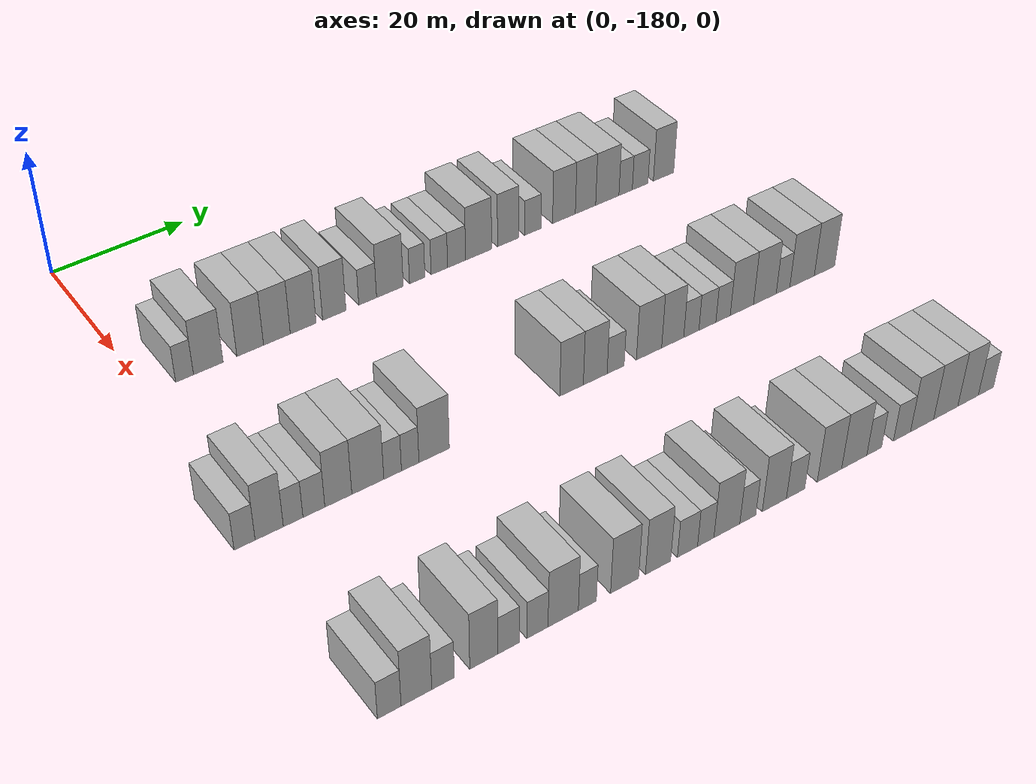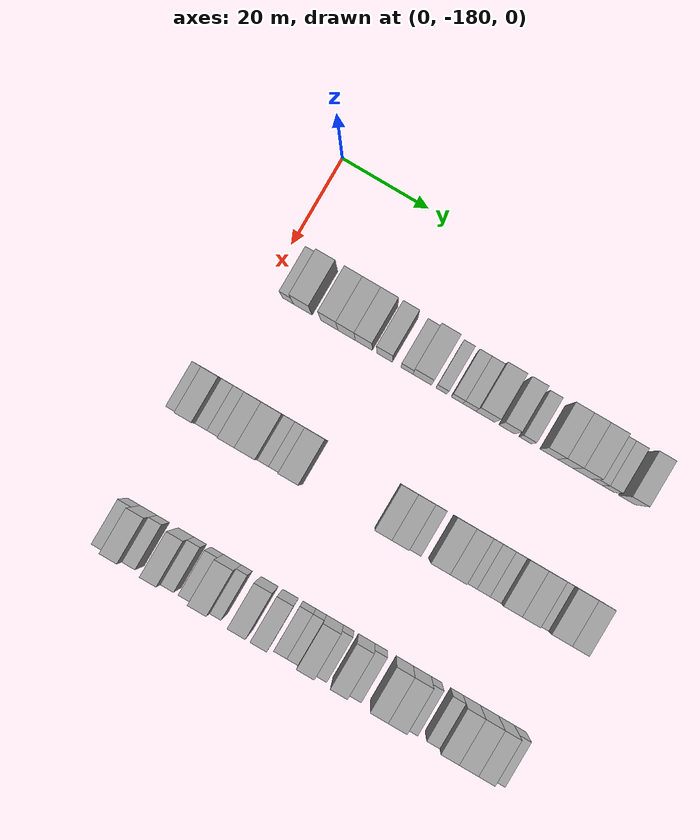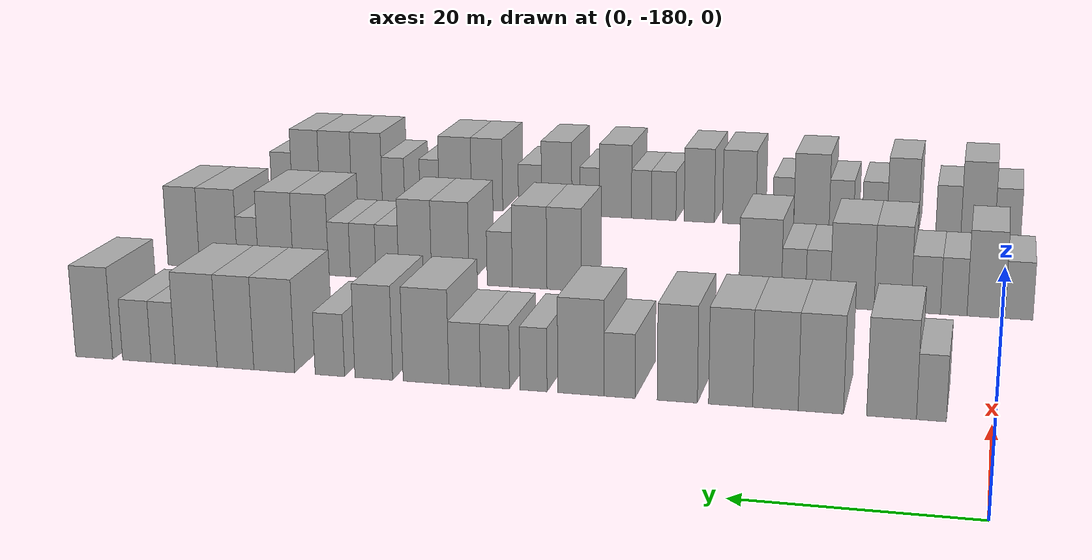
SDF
<sdf version="1.6">
 <world name="default">
  <model name="building_19">
   <static>1</static>
   <pose>25.0000 -174.8789 0 0.000000 0.000000 0.000000</pose>
   <link name="link">
    <pose>0 0 3.00 0 0 0</pose>
    <collision name="collision"><geometry><box><size>10.0000 2.5469 6.0000</size></box></geometry></collision>
    <visual name="visual">
     <cast_shadows>0</cast_shadows>
     <geometry><box><size>10.0000 2.5469 6.0000</size></box></geometry>
     <material>
      <script>
       <uri>model://HANNAS_wall/materials/scripts</uri>
       <uri>model://HANNAS_wall/materials/textures</uri>
       <name>vrc/HANNAS_wall</name>
      </script>
     </material>
    </visual>
   </link>
  </model>
  <model name="building_20">
   <static>1</static>
   <pose>25.0000 -171.4664 0 0.000000 0.000000 0.000000</pose>
   <link name="link">
    <pose>0 0 4.50 0 0 0</pose>
    <collision name="collision"><geometry><box><size>10.0000 4.2780 9.0000</size></box></geometry></collision>
    <visual name="visual">
     <cast_shadows>0</cast_shadows>
     <geometry><box><size>10.0000 4.2780 9.0000</size></box></geometry>
     <material>
      <script>
       <uri>model://HANNAS_wall/materials/scripts</uri>
       <uri>model://HANNAS_wall/materials/textures</uri>
       <name>vrc/HANNAS_wall</name>
      </script>
     </material>
    </visual>
   </link>
  </model>
  <model name="building_21">
   <static>1</static>
   <pose>25.0000 -165.3564 0 0.000000 0.000000 0.000000</pose>
   <link name="link">
    <pose>0 0 4.50 0 0 0</pose>
    <collision name="collision"><geometry><box><size>10.0000 3.9420 9.0000</size></box></geometry></collision>
    <visual name="visual">
     <cast_shadows>0</cast_shadows>
     <geometry><box><size>10.0000 3.9420 9.0000</size></box></geometry>
     <material>
      <script>
       <uri>model://HANNAS_wall/materials/scripts</uri>
       <uri>model://HANNAS_wall/materials/textures</uri>
       <name>vrc/HANNAS_wall</name>
      </script>
     </material>
    </visual>
   </link>
  </model>
  <model name="building_22">
   <static>1</static>
   <pose>25.0000 -161.3830 0 0.000000 0.000000 0.000000</pose>
   <link name="link">
    <pose>0 0 4.50 0 0 0</pose>
    <collision name="collision"><geometry><box><size>10.0000 4.0049 9.0000</size></box></geometry></collision>
    <visual name="visual">
     <cast_shadows>0</cast_shadows>
     <geometry><box><size>10.0000 4.0049 9.0000</size></box></geometry>
     <material>
      <script>
       <uri>model://HANNAS_wall/materials/scripts</uri>
       <uri>model://HANNAS_wall/materials/textures</uri>
       <name>vrc/HANNAS_wall</name>
      </script>
     </material>
    </visual>
   </link>
  </model>
  <model name="building_23">
   <static>1</static>
   <pose>25.0000 -157.4230 0 0.000000 0.000000 0.000000</pose>
   <link name="link">
    <pose>0 0 4.50 0 0 0</pose>
    <collision name="collision"><geometry><box><size>10.0000 3.9150 9.0000</size></box></geometry></collision>
    <visual name="visual">
     <cast_shadows>0</cast_shadows>
     <geometry><box><size>10.0000 3.9150 9.0000</size></box></geometry>
     <material>
      <script>
       <uri>model://HANNAS_wall/materials/scripts</uri>
       <uri>model://HANNAS_wall/materials/textures</uri>
       <name>vrc/HANNAS_wall</name>
      </script>
     </material>
    </visual>
   </link>
  </model>
  <model name="building_24">
   <static>1</static>
   <pose>25.0000 -152.6581 0 0.000000 0.000000 0.000000</pose>
   <link name="link">
    <pose>0 0 4.50 0 0 0</pose>
    <collision name="collision"><geometry><box><size>10.0000 3.6148 9.0000</size></box></geometry></collision>
    <visual name="visual">
     <cast_shadows>0</cast_shadows>
     <geometry><box><size>10.0000 3.6148 9.0000</size></box></geometry>
     <material>
      <script>
       <uri>model://HANNAS_wall/materials/scripts</uri>
       <uri>model://HANNAS_wall/materials/textures</uri>
       <name>vrc/HANNAS_wall</name>
      </script>
     </material>
    </visual>
   </link>
  </model>
  <model name="building_25">
   <static>1</static>
   <pose>25.0000 -147.4534 0 0.000000 0.000000 0.000000</pose>
   <link name="link">
    <pose>0 0 3.00 0 0 0</pose>
    <collision name="collision"><geometry><box><size>10.0000 2.7946 6.0000</size></box></geometry></collision>
    <visual name="visual">
     <cast_shadows>0</cast_shadows>
     <geometry><box><size>10.0000 2.7946 6.0000</size></box></geometry>
     <material>
      <script>
       <uri>model://HANNAS_wall/materials/scripts</uri>
       <uri>model://HANNAS_wall/materials/textures</uri>
       <name>vrc/HANNAS_wall</name>
      </script>
     </material>
    </visual>
   </link>
  </model>
  <model name="building_26">
   <static>1</static>
   <pose>25.0000 -143.9272 0 0.000000 0.000000 0.000000</pose>
   <link name="link">
    <pose>0 0 4.50 0 0 0</pose>
    <collision name="collision"><geometry><box><size>10.0000 4.2579 9.0000</size></box></geometry></collision>
    <visual name="visual">
     <cast_shadows>0</cast_shadows>
     <geometry><box><size>10.0000 4.2579 9.0000</size></box></geometry>
     <material>
      <script>
       <uri>model://HANNAS_wall/materials/scripts</uri>
       <uri>model://HANNAS_wall/materials/textures</uri>
       <name>vrc/HANNAS_wall</name>
      </script>
     </material>
    </visual>
   </link>
  </model>
  <model name="building_27">
   <static>1</static>
   <pose>25.0000 -139.5497 0 0.000000 0.000000 0.000000</pose>
   <link name="link">
    <pose>0 0 3.00 0 0 0</pose>
    <collision name="collision"><geometry><box><size>10.0000 2.4971 6.0000</size></box></geometry></collision>
    <visual name="visual">
     <cast_shadows>0</cast_shadows>
     <geometry><box><size>10.0000 2.4971 6.0000</size></box></geometry>
     <material>
      <script>
       <uri>model://HANNAS_wall/materials/scripts</uri>
       <uri>model://HANNAS_wall/materials/textures</uri>
       <name>vrc/HANNAS_wall</name>
      </script>
     </material>
    </visual>
   </link>
  </model>
  <model name="building_28">
   <static>1</static>
   <pose>25.0000 -135.9501 0 0.000000 0.000000 0.000000</pose>
   <link name="link">
    <pose>0 0 3.00 0 0 0</pose>
    <collision name="collision"><geometry><box><size>10.0000 2.7020 6.0000</size></box></geometry></collision>
    <visual name="visual">
     <cast_shadows>0</cast_shadows>
     <geometry><box><size>10.0000 2.7020 6.0000</size></box></geometry>
     <material>
      <script>
       <uri>model://HANNAS_wall/materials/scripts</uri>
       <uri>model://HANNAS_wall/materials/textures</uri>
       <name>vrc/HANNAS_wall</name>
      </script>
     </material>
    </visual>
   </link>
  </model>
  <model name="building_29">
   <static>1</static>
   <pose>25.0000 -133.1098 0 0.000000 0.000000 0.000000</pose>
   <link name="link">
    <pose>0 0 3.00 0 0 0</pose>
    <collision name="collision"><geometry><box><size>10.0000 2.9786 6.0000</size></box></geometry></collision>
    <visual name="visual">
     <cast_shadows>0</cast_shadows>
     <geometry><box><size>10.0000 2.9786 6.0000</size></box></geometry>
     <material>
      <script>
       <uri>model://HANNAS_wall/materials/scripts</uri>
       <uri>model://HANNAS_wall/materials/textures</uri>
       <name>vrc/HANNAS_wall</name>
      </script>
     </material>
    </visual>
   </link>
  </model>
  <model name="building_30">
   <static>1</static>
   <pose>25.0000 -129.4488 0 0.000000 0.000000 0.000000</pose>
   <link name="link">
    <pose>0 0 4.50 0 0 0</pose>
    <collision name="collision"><geometry><box><size>10.0000 4.3434 9.0000</size></box></geometry></collision>
    <visual name="visual">
     <cast_shadows>0</cast_shadows>
     <geometry><box><size>10.0000 4.3434 9.0000</size></box></geometry>
     <material>
      <script>
       <uri>model://HANNAS_wall/materials/scripts</uri>
       <uri>model://HANNAS_wall/materials/textures</uri>
       <name>vrc/HANNAS_wall</name>
      </script>
     </material>
    </visual>
   </link>
  </model>
  <model name="building_31">
   <static>1</static>
   <pose>25.0000 -124.4628 0 0.000000 0.000000 0.000000</pose>
   <link name="link">
    <pose>0 0 4.50 0 0 0</pose>
    <collision name="collision"><geometry><box><size>10.0000 3.6286 9.0000</size></box></geometry></collision>
    <visual name="visual">
     <cast_shadows>0</cast_shadows>
     <geometry><box><size>10.0000 3.6286 9.0000</size></box></geometry>
     <material>
      <script>
       <uri>model://HANNAS_wall/materials/scripts</uri>
       <uri>model://HANNAS_wall/materials/textures</uri>
       <name>vrc/HANNAS_wall</name>
      </script>
     </material>
    </visual>
   </link>
  </model>
  <model name="building_32">
   <static>1</static>
   <pose>25.0000 -120.2204 0 0.000000 0.000000 0.000000</pose>
   <link name="link">
    <pose>0 0 3.00 0 0 0</pose>
    <collision name="collision"><geometry><box><size>10.0000 2.8562 6.0000</size></box></geometry></collision>
    <visual name="visual">
     <cast_shadows>0</cast_shadows>
     <geometry><box><size>10.0000 2.8562 6.0000</size></box></geometry>
     <material>
      <script>
       <uri>model://HANNAS_wall/materials/scripts</uri>
       <uri>model://HANNAS_wall/materials/textures</uri>
       <name>vrc/HANNAS_wall</name>
      </script>
     </material>
    </visual>
   </link>
  </model>
  <model name="building_33">
   <static>1</static>
   <pose>25.0000 -114.7876 0 0.000000 0.000000 0.000000</pose>
   <link name="link">
    <pose>0 0 4.50 0 0 0</pose>
    <collision name="collision"><geometry><box><size>10.0000 4.0094 9.0000</size></box></geometry></collision>
    <visual name="visual">
     <cast_shadows>0</cast_shadows>
     <geometry><box><size>10.0000 4.0094 9.0000</size></box></geometry>
     <material>
      <script>
       <uri>model://HANNAS_wall/materials/scripts</uri>
       <uri>model://HANNAS_wall/materials/textures</uri>
       <name>vrc/HANNAS_wall</name>
      </script>
     </material>
    </visual>
   </link>
  </model>
  <model name="building_34">
   <static>1</static>
   <pose>25.0000 -110.9722 0 0.000000 0.000000 0.000000</pose>
   <link name="link">
    <pose>0 0 4.50 0 0 0</pose>
    <collision name="collision"><geometry><box><size>10.0000 3.6215 9.0000</size></box></geometry></collision>
    <visual name="visual">
     <cast_shadows>0</cast_shadows>
     <geometry><box><size>10.0000 3.6215 9.0000</size></box></geometry>
     <material>
      <script>
       <uri>model://HANNAS_wall/materials/scripts</uri>
       <uri>model://HANNAS_wall/materials/textures</uri>
       <name>vrc/HANNAS_wall</name>
      </script>
     </material>
    </visual>
   </link>
  </model>
  <model name="building_35">
   <static>1</static>
   <pose>25.0000 -107.0577 0 0.000000 0.000000 0.000000</pose>
   <link name="link">
    <pose>0 0 4.50 0 0 0</pose>
    <collision name="collision"><geometry><box><size>10.0000 4.2074 9.0000</size></box></geometry></collision>
    <visual name="visual">
     <cast_shadows>0</cast_shadows>
     <geometry><box><size>10.0000 4.2074 9.0000</size></box></geometry>
     <material>
      <script>
       <uri>model://HANNAS_wall/materials/scripts</uri>
       <uri>model://HANNAS_wall/materials/textures</uri>
       <name>vrc/HANNAS_wall</name>
      </script>
     </material>
    </visual>
   </link>
  </model>
  <model name="building_36">
   <static>1</static>
   <pose>25.0000 -103.7360 0 0.000000 0.000000 0.000000</pose>
   <link name="link">
    <pose>0 0 3.00 0 0 0</pose>
    <collision name="collision"><geometry><box><size>10.0000 2.4360 6.0000</size></box></geometry></collision>
    <visual name="visual">
     <cast_shadows>0</cast_shadows>
     <geometry><box><size>10.0000 2.4360 6.0000</size></box></geometry>
     <material>
      <script>
       <uri>model://HANNAS_wall/materials/scripts</uri>
       <uri>model://HANNAS_wall/materials/textures</uri>
       <name>vrc/HANNAS_wall</name>
      </script>
     </material>
    </visual>
   </link>
  </model>
  <model name="building_37">
   <static>1</static>
   <pose>25.0000 -101.0745 0 0.000000 0.000000 0.000000</pose>
   <link name="link">
    <pose>0 0 3.00 0 0 0</pose>
    <collision name="collision"><geometry><box><size>10.0000 2.8871 6.0000</size></box></geometry></collision>
    <visual name="visual">
     <cast_shadows>0</cast_shadows>
     <geometry><box><size>10.0000 2.8871 6.0000</size></box></geometry>
     <material>
      <script>
       <uri>model://HANNAS_wall/materials/scripts</uri>
       <uri>model://HANNAS_wall/materials/textures</uri>
       <name>vrc/HANNAS_wall</name>
      </script>
     </material>
    </visual>
   </link>
  </model>
  <model name="building_38">
   <static>1</static>
   <pose>25.0000 -96.7345 0 0.000000 0.000000 0.000000</pose>
   <link name="link">
    <pose>0 0 4.50 0 0 0</pose>
    <collision name="collision"><geometry><box><size>10.0000 3.7930 9.0000</size></box></geometry></collision>
    <visual name="visual">
     <cast_shadows>0</cast_shadows>
     <geometry><box><size>10.0000 3.7930 9.0000</size></box></geometry>
     <material>
      <script>
       <uri>model://HANNAS_wall/materials/scripts</uri>
       <uri>model://HANNAS_wall/materials/textures</uri>
       <name>vrc/HANNAS_wall</name>
      </script>
     </material>
    </visual>
   </link>
  </model>
  <model name="building_152">
   <static>1</static>
   <pose>55.0000 -182.3307 0 0.000000 0.000000 0.000000</pose>
   <link name="link">
    <pose>0 0 3.00 0 0 0</pose>
    <collision name="collision"><geometry><box><size>10.0000 2.7655 6.0000</size></box></geometry></collision>
    <visual name="visual">
     <cast_shadows>0</cast_shadows>
     <geometry><box><size>10.0000 2.7655 6.0000</size></box></geometry>
     <material>
      <script>
       <uri>model://HANNAS_wall/materials/scripts</uri>
       <uri>model://HANNAS_wall/materials/textures</uri>
       <name>vrc/HANNAS_wall</name>
      </script>
     </material>
    </visual>
   </link>
  </model>
  <model name="building_153">
   <static>1</static>
   <pose>55.0000 -179.0733 0 0.000000 0.000000 0.000000</pose>
   <link name="link">
    <pose>0 0 4.50 0 0 0</pose>
    <collision name="collision"><geometry><box><size>10.0000 3.7493 9.0000</size></box></geometry></collision>
    <visual name="visual">
     <cast_shadows>0</cast_shadows>
     <geometry><box><size>10.0000 3.7493 9.0000</size></box></geometry>
     <material>
      <script>
       <uri>model://HANNAS_wall/materials/scripts</uri>
       <uri>model://HANNAS_wall/materials/textures</uri>
       <name>vrc/HANNAS_wall</name>
      </script>
     </material>
    </visual>
   </link>
  </model>
  <model name="building_154">
   <static>1</static>
   <pose>55.0000 -175.8776 0 0.000000 0.000000 0.000000</pose>
   <link name="link">
    <pose>0 0 3.00 0 0 0</pose>
    <collision name="collision"><geometry><box><size>10.0000 2.6421 6.0000</size></box></geometry></collision>
    <visual name="visual">
     <cast_shadows>0</cast_shadows>
     <geometry><box><size>10.0000 2.6421 6.0000</size></box></geometry>
     <material>
      <script>
       <uri>model://HANNAS_wall/materials/scripts</uri>
       <uri>model://HANNAS_wall/materials/textures</uri>
       <name>vrc/HANNAS_wall</name>
      </script>
     </material>
    </visual>
   </link>
  </model>
  <model name="building_155">
   <static>1</static>
   <pose>55.0000 -173.0666 0 0.000000 0.000000 0.000000</pose>
   <link name="link">
    <pose>0 0 3.00 0 0 0</pose>
    <collision name="collision"><geometry><box><size>10.0000 2.9797 6.0000</size></box></geometry></collision>
    <visual name="visual">
     <cast_shadows>0</cast_shadows>
     <geometry><box><size>10.0000 2.9797 6.0000</size></box></geometry>
     <material>
      <script>
       <uri>model://HANNAS_wall/materials/scripts</uri>
       <uri>model://HANNAS_wall/materials/textures</uri>
       <name>vrc/HANNAS_wall</name>
      </script>
     </material>
    </visual>
   </link>
  </model>
  <model name="building_156">
   <static>1</static>
   <pose>55.0000 -169.7122 0 0.000000 0.000000 0.000000</pose>
   <link name="link">
    <pose>0 0 4.50 0 0 0</pose>
    <collision name="collision"><geometry><box><size>10.0000 3.7293 9.0000</size></box></geometry></collision>
    <visual name="visual">
     <cast_shadows>0</cast_shadows>
     <geometry><box><size>10.0000 3.7293 9.0000</size></box></geometry>
     <material>
      <script>
       <uri>model://HANNAS_wall/materials/scripts</uri>
       <uri>model://HANNAS_wall/materials/textures</uri>
       <name>vrc/HANNAS_wall</name>
      </script>
     </material>
    </visual>
   </link>
  </model>
  <model name="building_157">
   <static>1</static>
   <pose>55.0000 -165.6059 0 0.000000 0.000000 0.000000</pose>
   <link name="link">
    <pose>0 0 4.50 0 0 0</pose>
    <collision name="collision"><geometry><box><size>10.0000 4.4833 9.0000</size></box></geometry></collision>
    <visual name="visual">
     <cast_shadows>0</cast_shadows>
     <geometry><box><size>10.0000 4.4833 9.0000</size></box></geometry>
     <material>
      <script>
       <uri>model://HANNAS_wall/materials/scripts</uri>
       <uri>model://HANNAS_wall/materials/textures</uri>
       <name>vrc/HANNAS_wall</name>
      </script>
     </material>
    </visual>
   </link>
  </model>
  <model name="building_158">
   <static>1</static>
   <pose>55.0000 -162.1095 0 0.000000 0.000000 0.000000</pose>
   <link name="link">
    <pose>0 0 3.00 0 0 0</pose>
    <collision name="collision"><geometry><box><size>10.0000 2.5094 6.0000</size></box></geometry></collision>
    <visual name="visual">
     <cast_shadows>0</cast_shadows>
     <geometry><box><size>10.0000 2.5094 6.0000</size></box></geometry>
     <material>
      <script>
       <uri>model://HANNAS_wall/materials/scripts</uri>
       <uri>model://HANNAS_wall/materials/textures</uri>
       <name>vrc/HANNAS_wall</name>
      </script>
     </material>
    </visual>
   </link>
  </model>
  <model name="building_159">
   <static>1</static>
   <pose>55.0000 -159.5993 0 0.000000 0.000000 0.000000</pose>
   <link name="link">
    <pose>0 0 3.00 0 0 0</pose>
    <collision name="collision"><geometry><box><size>10.0000 2.5111 6.0000</size></box></geometry></collision>
    <visual name="visual">
     <cast_shadows>0</cast_shadows>
     <geometry><box><size>10.0000 2.5111 6.0000</size></box></geometry>
     <material>
      <script>
       <uri>model://HANNAS_wall/materials/scripts</uri>
       <uri>model://HANNAS_wall/materials/textures</uri>
       <name>vrc/HANNAS_wall</name>
      </script>
     </material>
    </visual>
   </link>
  </model>
  <model name="building_160">
   <static>1</static>
   <pose>55.0000 -156.1346 0 0.000000 0.000000 0.000000</pose>
   <link name="link">
    <pose>0 0 4.50 0 0 0</pose>
    <collision name="collision"><geometry><box><size>10.0000 4.4182 9.0000</size></box></geometry></collision>
    <visual name="visual">
     <cast_shadows>0</cast_shadows>
     <geometry><box><size>10.0000 4.4182 9.0000</size></box></geometry>
     <material>
      <script>
       <uri>model://HANNAS_wall/materials/scripts</uri>
       <uri>model://HANNAS_wall/materials/textures</uri>
       <name>vrc/HANNAS_wall</name>
      </script>
     </material>
    </visual>
   </link>
  </model>
  <model name="building_161">
   <static>1</static>
   <pose>55.0000 -135.3387 0 0.000000 0.000000 0.000000</pose>
   <link name="link">
    <pose>0 0 4.50 0 0 0</pose>
    <collision name="collision"><geometry><box><size>10.0000 3.7246 9.0000</size></box></geometry></collision>
    <visual name="visual">
     <cast_shadows>0</cast_shadows>
     <geometry><box><size>10.0000 3.7246 9.0000</size></box></geometry>
     <material>
      <script>
       <uri>model://HANNAS_wall/materials/scripts</uri>
       <uri>model://HANNAS_wall/materials/textures</uri>
       <name>vrc/HANNAS_wall</name>
      </script>
     </material>
    </visual>
   </link>
  </model>
  <model name="building_162">
   <static>1</static>
   <pose>55.0000 -131.5824 0 0.000000 0.000000 0.000000</pose>
   <link name="link">
    <pose>0 0 4.50 0 0 0</pose>
    <collision name="collision"><geometry><box><size>10.0000 3.7881 9.0000</size></box></geometry></collision>
    <visual name="visual">
     <cast_shadows>0</cast_shadows>
     <geometry><box><size>10.0000 3.7881 9.0000</size></box></geometry>
     <material>
      <script>
       <uri>model://HANNAS_wall/materials/scripts</uri>
       <uri>model://HANNAS_wall/materials/textures</uri>
       <name>vrc/HANNAS_wall</name>
      </script>
     </material>
    </visual>
   </link>
  </model>
  <model name="building_163">
   <static>1</static>
   <pose>55.0000 -128.3082 0 0.000000 0.000000 0.000000</pose>
   <link name="link">
    <pose>0 0 3.00 0 0 0</pose>
    <collision name="collision"><geometry><box><size>10.0000 2.7602 6.0000</size></box></geometry></collision>
    <visual name="visual">
     <cast_shadows>0</cast_shadows>
     <geometry><box><size>10.0000 2.7602 6.0000</size></box></geometry>
     <material>
      <script>
       <uri>model://HANNAS_wall/materials/scripts</uri>
       <uri>model://HANNAS_wall/materials/textures</uri>
       <name>vrc/HANNAS_wall</name>
      </script>
     </material>
    </visual>
   </link>
  </model>
  <model name="building_164">
   <static>1</static>
   <pose>55.0000 -122.8424 0 0.000000 0.000000 0.000000</pose>
   <link name="link">
    <pose>0 0 4.50 0 0 0</pose>
    <collision name="collision"><geometry><box><size>10.0000 4.1714 9.0000</size></box></geometry></collision>
    <visual name="visual">
     <cast_shadows>0</cast_shadows>
     <geometry><box><size>10.0000 4.1714 9.0000</size></box></geometry>
     <material>
      <script>
       <uri>model://HANNAS_wall/materials/scripts</uri>
       <uri>model://HANNAS_wall/materials/textures</uri>
       <name>vrc/HANNAS_wall</name>
      </script>
     </material>
    </visual>
   </link>
  </model>
  <model name="building_165">
   <static>1</static>
   <pose>55.0000 -118.9112 0 0.000000 0.000000 0.000000</pose>
   <link name="link">
    <pose>0 0 4.50 0 0 0</pose>
    <collision name="collision"><geometry><box><size>10.0000 3.6910 9.0000</size></box></geometry></collision>
    <visual name="visual">
     <cast_shadows>0</cast_shadows>
     <geometry><box><size>10.0000 3.6910 9.0000</size></box></geometry>
     <material>
      <script>
       <uri>model://HANNAS_wall/materials/scripts</uri>
       <uri>model://HANNAS_wall/materials/textures</uri>
       <name>vrc/HANNAS_wall</name>
      </script>
     </material>
    </visual>
   </link>
  </model>
  <model name="building_166">
   <static>1</static>
   <pose>55.0000 -115.7811 0 0.000000 0.000000 0.000000</pose>
   <link name="link">
    <pose>0 0 3.00 0 0 0</pose>
    <collision name="collision"><geometry><box><size>10.0000 2.5693 6.0000</size></box></geometry></collision>
    <visual name="visual">
     <cast_shadows>0</cast_shadows>
     <geometry><box><size>10.0000 2.5693 6.0000</size></box></geometry>
     <material>
      <script>
       <uri>model://HANNAS_wall/materials/scripts</uri>
       <uri>model://HANNAS_wall/materials/textures</uri>
       <name>vrc/HANNAS_wall</name>
      </script>
     </material>
    </visual>
   </link>
  </model>
  <model name="building_167">
   <static>1</static>
   <pose>55.0000 -113.0417 0 0.000000 0.000000 0.000000</pose>
   <link name="link">
    <pose>0 0 3.00 0 0 0</pose>
    <collision name="collision"><geometry><box><size>10.0000 2.9095 6.0000</size></box></geometry></collision>
    <visual name="visual">
     <cast_shadows>0</cast_shadows>
     <geometry><box><size>10.0000 2.9095 6.0000</size></box></geometry>
     <material>
      <script>
       <uri>model://HANNAS_wall/materials/scripts</uri>
       <uri>model://HANNAS_wall/materials/textures</uri>
       <name>vrc/HANNAS_wall</name>
      </script>
     </material>
    </visual>
   </link>
  </model>
  <model name="building_168">
   <static>1</static>
   <pose>55.0000 -110.3480 0 0.000000 0.000000 0.000000</pose>
   <link name="link">
    <pose>0 0 3.00 0 0 0</pose>
    <collision name="collision"><geometry><box><size>10.0000 2.4779 6.0000</size></box></geometry></collision>
    <visual name="visual">
     <cast_shadows>0</cast_shadows>
     <geometry><box><size>10.0000 2.4779 6.0000</size></box></geometry>
     <material>
      <script>
       <uri>model://HANNAS_wall/materials/scripts</uri>
       <uri>model://HANNAS_wall/materials/textures</uri>
       <name>vrc/HANNAS_wall</name>
      </script>
     </material>
    </visual>
   </link>
  </model>
  <model name="building_169">
   <static>1</static>
   <pose>55.0000 -107.0829 0 0.000000 0.000000 0.000000</pose>
   <link name="link">
    <pose>0 0 4.50 0 0 0</pose>
    <collision name="collision"><geometry><box><size>10.0000 4.0522 9.0000</size></box></geometry></collision>
    <visual name="visual">
     <cast_shadows>0</cast_shadows>
     <geometry><box><size>10.0000 4.0522 9.0000</size></box></geometry>
     <material>
      <script>
       <uri>model://HANNAS_wall/materials/scripts</uri>
       <uri>model://HANNAS_wall/materials/textures</uri>
       <name>vrc/HANNAS_wall</name>
      </script>
     </material>
    </visual>
   </link>
  </model>
  <model name="building_170">
   <static>1</static>
   <pose>55.0000 -103.0414 0 0.000000 0.000000 0.000000</pose>
   <link name="link">
    <pose>0 0 4.50 0 0 0</pose>
    <collision name="collision"><geometry><box><size>10.0000 4.0308 9.0000</size></box></geometry></collision>
    <visual name="visual">
     <cast_shadows>0</cast_shadows>
     <geometry><box><size>10.0000 4.0308 9.0000</size></box></geometry>
     <material>
      <script>
       <uri>model://HANNAS_wall/materials/scripts</uri>
       <uri>model://HANNAS_wall/materials/textures</uri>
       <name>vrc/HANNAS_wall</name>
      </script>
     </material>
    </visual>
   </link>
  </model>
  <model name="building_171">
   <static>1</static>
   <pose>55.0000 -99.8076 0 0.000000 0.000000 0.000000</pose>
   <link name="link">
    <pose>0 0 3.00 0 0 0</pose>
    <collision name="collision"><geometry><box><size>10.0000 2.4369 6.0000</size></box></geometry></collision>
    <visual name="visual">
     <cast_shadows>0</cast_shadows>
     <geometry><box><size>10.0000 2.4369 6.0000</size></box></geometry>
     <material>
      <script>
       <uri>model://HANNAS_wall/materials/scripts</uri>
       <uri>model://HANNAS_wall/materials/textures</uri>
       <name>vrc/HANNAS_wall</name>
      </script>
     </material>
    </visual>
   </link>
  </model>
  <model name="building_172">
   <static>1</static>
   <pose>55.0000 -96.3652 0 0.000000 0.000000 0.000000</pose>
   <link name="link">
    <pose>0 0 4.50 0 0 0</pose>
    <collision name="collision"><geometry><box><size>10.0000 4.4479 9.0000</size></box></geometry></collision>
    <visual name="visual">
     <cast_shadows>0</cast_shadows>
     <geometry><box><size>10.0000 4.4479 9.0000</size></box></geometry>
     <material>
      <script>
       <uri>model://HANNAS_wall/materials/scripts</uri>
       <uri>model://HANNAS_wall/materials/textures</uri>
       <name>vrc/HANNAS_wall</name>
      </script>
     </material>
    </visual>
   </link>
  </model>
  <model name="building_173">
   <static>1</static>
   <pose>55.0000 -92.2759 0 0.000000 0.000000 0.000000</pose>
   <link name="link">
    <pose>0 0 4.50 0 0 0</pose>
    <collision name="collision"><geometry><box><size>10.0000 3.7306 9.0000</size></box></geometry></collision>
    <visual name="visual">
     <cast_shadows>0</cast_shadows>
     <geometry><box><size>10.0000 3.7306 9.0000</size></box></geometry>
     <material>
      <script>
       <uri>model://HANNAS_wall/materials/scripts</uri>
       <uri>model://HANNAS_wall/materials/textures</uri>
       <name>vrc/HANNAS_wall</name>
      </script>
     </material>
    </visual>
   </link>
  </model>
  <model name="building_282">
   <static>1</static>
   <pose>85.0000 -181.1447 0 0.000000 0.000000 0.000000</pose>
   <link name="link">
    <pose>0 0 3.00 0 0 0</pose>
    <collision name="collision"><geometry><box><size>10.0000 2.9605 6.0000</size></box></geometry></collision>
    <visual name="visual">
     <cast_shadows>0</cast_shadows>
     <geometry><box><size>10.0000 2.9605 6.0000</size></box></geometry>
     <material>
      <script>
       <uri>model://HANNAS_wall/materials/scripts</uri>
       <uri>model://HANNAS_wall/materials/textures</uri>
       <name>vrc/HANNAS_wall</name>
      </script>
     </material>
    </visual>
   </link>
  </model>
  <model name="building_283">
   <static>1</static>
   <pose>85.0000 -177.7277 0 0.000000 0.000000 0.000000</pose>
   <link name="link">
    <pose>0 0 4.50 0 0 0</pose>
    <collision name="collision"><geometry><box><size>10.0000 3.8734 9.0000</size></box></geometry></collision>
    <visual name="visual">
     <cast_shadows>0</cast_shadows>
     <geometry><box><size>10.0000 3.8734 9.0000</size></box></geometry>
     <material>
      <script>
       <uri>model://HANNAS_wall/materials/scripts</uri>
       <uri>model://HANNAS_wall/materials/textures</uri>
       <name>vrc/HANNAS_wall</name>
      </script>
     </material>
    </visual>
   </link>
  </model>
  <model name="building_284">
   <static>1</static>
   <pose>85.0000 -174.3427 0 0.000000 0.000000 0.000000</pose>
   <link name="link">
    <pose>0 0 3.00 0 0 0</pose>
    <collision name="collision"><geometry><box><size>10.0000 2.8967 6.0000</size></box></geometry></collision>
    <visual name="visual">
     <cast_shadows>0</cast_shadows>
     <geometry><box><size>10.0000 2.8967 6.0000</size></box></geometry>
     <material>
      <script>
       <uri>model://HANNAS_wall/materials/scripts</uri>
       <uri>model://HANNAS_wall/materials/textures</uri>
       <name>vrc/HANNAS_wall</name>
      </script>
     </material>
    </visual>
   </link>
  </model>
  <model name="building_285">
   <static>1</static>
   <pose>85.0000 -169.0657 0 0.000000 0.000000 0.000000</pose>
   <link name="link">
    <pose>0 0 4.50 0 0 0</pose>
    <collision name="collision"><geometry><box><size>10.0000 3.6572 9.0000</size></box></geometry></collision>
    <visual name="visual">
     <cast_shadows>0</cast_shadows>
     <geometry><box><size>10.0000 3.6572 9.0000</size></box></geometry>
     <material>
      <script>
       <uri>model://HANNAS_wall/materials/scripts</uri>
       <uri>model://HANNAS_wall/materials/textures</uri>
       <name>vrc/HANNAS_wall</name>
      </script>
     </material>
    </visual>
   </link>
  </model>
  <model name="building_286">
   <static>1</static>
   <pose>85.0000 -165.7817 0 0.000000 0.000000 0.000000</pose>
   <link name="link">
    <pose>0 0 3.00 0 0 0</pose>
    <collision name="collision"><geometry><box><size>10.0000 2.9108 6.0000</size></box></geometry></collision>
    <visual name="visual">
     <cast_shadows>0</cast_shadows>
     <geometry><box><size>10.0000 2.9108 6.0000</size></box></geometry>
     <material>
      <script>
       <uri>model://HANNAS_wall/materials/scripts</uri>
       <uri>model://HANNAS_wall/materials/textures</uri>
       <name>vrc/HANNAS_wall</name>
      </script>
     </material>
    </visual>
   </link>
  </model>
  <model name="building_287">
   <static>1</static>
   <pose>85.0000 -161.8947 0 0.000000 0.000000 0.000000</pose>
   <link name="link">
    <pose>0 0 3.00 0 0 0</pose>
    <collision name="collision"><geometry><box><size>10.0000 2.8632 6.0000</size></box></geometry></collision>
    <visual name="visual">
     <cast_shadows>0</cast_shadows>
     <geometry><box><size>10.0000 2.8632 6.0000</size></box></geometry>
     <material>
      <script>
       <uri>model://HANNAS_wall/materials/scripts</uri>
       <uri>model://HANNAS_wall/materials/textures</uri>
       <name>vrc/HANNAS_wall</name>
      </script>
     </material>
    </visual>
   </link>
  </model>
  <model name="building_288">
   <static>1</static>
   <pose>85.0000 -158.3770 0 0.000000 0.000000 0.000000</pose>
   <link name="link">
    <pose>0 0 4.50 0 0 0</pose>
    <collision name="collision"><geometry><box><size>10.0000 4.1723 9.0000</size></box></geometry></collision>
    <visual name="visual">
     <cast_shadows>0</cast_shadows>
     <geometry><box><size>10.0000 4.1723 9.0000</size></box></geometry>
     <material>
      <script>
       <uri>model://HANNAS_wall/materials/scripts</uri>
       <uri>model://HANNAS_wall/materials/textures</uri>
       <name>vrc/HANNAS_wall</name>
      </script>
     </material>
    </visual>
   </link>
  </model>
  <model name="building_289">
   <static>1</static>
   <pose>85.0000 -155.0313 0 0.000000 0.000000 0.000000</pose>
   <link name="link">
    <pose>0 0 3.00 0 0 0</pose>
    <collision name="collision"><geometry><box><size>10.0000 2.5191 6.0000</size></box></geometry></collision>
    <visual name="visual">
     <cast_shadows>0</cast_shadows>
     <geometry><box><size>10.0000 2.5191 6.0000</size></box></geometry>
     <material>
      <script>
       <uri>model://HANNAS_wall/materials/scripts</uri>
       <uri>model://HANNAS_wall/materials/textures</uri>
       <name>vrc/HANNAS_wall</name>
      </script>
     </material>
    </visual>
   </link>
  </model>
  <model name="building_290">
   <static>1</static>
   <pose>85.0000 -149.7743 0 0.000000 0.000000 0.000000</pose>
   <link name="link">
    <pose>0 0 4.50 0 0 0</pose>
    <collision name="collision"><geometry><box><size>10.0000 3.9949 9.0000</size></box></geometry></collision>
    <visual name="visual">
     <cast_shadows>0</cast_shadows>
     <geometry><box><size>10.0000 3.9949 9.0000</size></box></geometry>
     <material>
      <script>
       <uri>model://HANNAS_wall/materials/scripts</uri>
       <uri>model://HANNAS_wall/materials/textures</uri>
       <name>vrc/HANNAS_wall</name>
      </script>
     </material>
    </visual>
   </link>
  </model>
  <model name="building_291">
   <static>1</static>
   <pose>85.0000 -144.9454 0 0.000000 0.000000 0.000000</pose>
   <link name="link">
    <pose>0 0 4.50 0 0 0</pose>
    <collision name="collision"><geometry><box><size>10.0000 3.6629 9.0000</size></box></geometry></collision>
    <visual name="visual">
     <cast_shadows>0</cast_shadows>
     <geometry><box><size>10.0000 3.6629 9.0000</size></box></geometry>
     <material>
      <script>
       <uri>model://HANNAS_wall/materials/scripts</uri>
       <uri>model://HANNAS_wall/materials/textures</uri>
       <name>vrc/HANNAS_wall</name>
      </script>
     </material>
    </visual>
   </link>
  </model>
  <model name="building_292">
   <static>1</static>
   <pose>85.0000 -140.6222 0 0.000000 0.000000 0.000000</pose>
   <link name="link">
    <pose>0 0 3.00 0 0 0</pose>
    <collision name="collision"><geometry><box><size>10.0000 2.9833 6.0000</size></box></geometry></collision>
    <visual name="visual">
     <cast_shadows>0</cast_shadows>
     <geometry><box><size>10.0000 2.9833 6.0000</size></box></geometry>
     <material>
      <script>
       <uri>model://HANNAS_wall/materials/scripts</uri>
       <uri>model://HANNAS_wall/materials/textures</uri>
       <name>vrc/HANNAS_wall</name>
      </script>
     </material>
    </visual>
   </link>
  </model>
  <model name="building_293">
   <static>1</static>
   <pose>85.0000 -137.9014 0 0.000000 0.000000 0.000000</pose>
   <link name="link">
    <pose>0 0 3.00 0 0 0</pose>
    <collision name="collision"><geometry><box><size>10.0000 2.4583 6.0000</size></box></geometry></collision>
    <visual name="visual">
     <cast_shadows>0</cast_shadows>
     <geometry><box><size>10.0000 2.4583 6.0000</size></box></geometry>
     <material>
      <script>
       <uri>model://HANNAS_wall/materials/scripts</uri>
       <uri>model://HANNAS_wall/materials/textures</uri>
       <name>vrc/HANNAS_wall</name>
      </script>
     </material>
    </visual>
   </link>
  </model>
  <model name="building_294">
   <static>1</static>
   <pose>85.0000 -134.7066 0 0.000000 0.000000 0.000000</pose>
   <link name="link">
    <pose>0 0 4.50 0 0 0</pose>
    <collision name="collision"><geometry><box><size>10.0000 3.9314 9.0000</size></box></geometry></collision>
    <visual name="visual">
     <cast_shadows>0</cast_shadows>
     <geometry><box><size>10.0000 3.9314 9.0000</size></box></geometry>
     <material>
      <script>
       <uri>model://HANNAS_wall/materials/scripts</uri>
       <uri>model://HANNAS_wall/materials/textures</uri>
       <name>vrc/HANNAS_wall</name>
      </script>
     </material>
    </visual>
   </link>
  </model>
  <model name="building_295">
   <static>1</static>
   <pose>85.0000 -131.5129 0 0.000000 0.000000 0.000000</pose>
   <link name="link">
    <pose>0 0 3.00 0 0 0</pose>
    <collision name="collision"><geometry><box><size>10.0000 2.4561 6.0000</size></box></geometry></collision>
    <visual name="visual">
     <cast_shadows>0</cast_shadows>
     <geometry><box><size>10.0000 2.4561 6.0000</size></box></geometry>
     <material>
      <script>
       <uri>model://HANNAS_wall/materials/scripts</uri>
       <uri>model://HANNAS_wall/materials/textures</uri>
       <name>vrc/HANNAS_wall</name>
      </script>
     </material>
    </visual>
   </link>
  </model>
  <model name="building_296">
   <static>1</static>
   <pose>85.0000 -127.3936 0 0.000000 0.000000 0.000000</pose>
   <link name="link">
    <pose>0 0 4.50 0 0 0</pose>
    <collision name="collision"><geometry><box><size>10.0000 3.7823 9.0000</size></box></geometry></collision>
    <visual name="visual">
     <cast_shadows>0</cast_shadows>
     <geometry><box><size>10.0000 3.7823 9.0000</size></box></geometry>
     <material>
      <script>
       <uri>model://HANNAS_wall/materials/scripts</uri>
       <uri>model://HANNAS_wall/materials/textures</uri>
       <name>vrc/HANNAS_wall</name>
      </script>
     </material>
    </visual>
   </link>
  </model>
  <model name="building_297">
   <static>1</static>
   <pose>85.0000 -124.0504 0 0.000000 0.000000 0.000000</pose>
   <link name="link">
    <pose>0 0 3.00 0 0 0</pose>
    <collision name="collision"><geometry><box><size>10.0000 2.9042 6.0000</size></box></geometry></collision>
    <visual name="visual">
     <cast_shadows>0</cast_shadows>
     <geometry><box><size>10.0000 2.9042 6.0000</size></box></geometry>
     <material>
      <script>
       <uri>model://HANNAS_wall/materials/scripts</uri>
       <uri>model://HANNAS_wall/materials/textures</uri>
       <name>vrc/HANNAS_wall</name>
      </script>
     </material>
    </visual>
   </link>
  </model>
  <model name="building_298">
   <static>1</static>
   <pose>85.0000 -118.6185 0 0.000000 0.000000 0.000000</pose>
   <link name="link">
    <pose>0 0 4.50 0 0 0</pose>
    <collision name="collision"><geometry><box><size>10.0000 3.9594 9.0000</size></box></geometry></collision>
    <visual name="visual">
     <cast_shadows>0</cast_shadows>
     <geometry><box><size>10.0000 3.9594 9.0000</size></box></geometry>
     <material>
      <script>
       <uri>model://HANNAS_wall/materials/scripts</uri>
       <uri>model://HANNAS_wall/materials/textures</uri>
       <name>vrc/HANNAS_wall</name>
      </script>
     </material>
    </visual>
   </link>
  </model>
  <model name="building_299">
   <static>1</static>
   <pose>85.0000 -114.5714 0 0.000000 0.000000 0.000000</pose>
   <link name="link">
    <pose>0 0 4.50 0 0 0</pose>
    <collision name="collision"><geometry><box><size>10.0000 4.1348 9.0000</size></box></geometry></collision>
    <visual name="visual">
     <cast_shadows>0</cast_shadows>
     <geometry><box><size>10.0000 4.1348 9.0000</size></box></geometry>
     <material>
      <script>
       <uri>model://HANNAS_wall/materials/scripts</uri>
       <uri>model://HANNAS_wall/materials/textures</uri>
       <name>vrc/HANNAS_wall</name>
      </script>
     </material>
    </visual>
   </link>
  </model>
  <model name="building_300">
   <static>1</static>
   <pose>85.0000 -111.2721 0 0.000000 0.000000 0.000000</pose>
   <link name="link">
    <pose>0 0 3.00 0 0 0</pose>
    <collision name="collision"><geometry><box><size>10.0000 2.4637 6.0000</size></box></geometry></collision>
    <visual name="visual">
     <cast_shadows>0</cast_shadows>
     <geometry><box><size>10.0000 2.4637 6.0000</size></box></geometry>
     <material>
      <script>
       <uri>model://HANNAS_wall/materials/scripts</uri>
       <uri>model://HANNAS_wall/materials/textures</uri>
       <name>vrc/HANNAS_wall</name>
      </script>
     </material>
    </visual>
   </link>
  </model>
  <model name="building_301">
   <static>1</static>
   <pose>85.0000 -106.5926 0 0.000000 0.000000 0.000000</pose>
   <link name="link">
    <pose>0 0 3.00 0 0 0</pose>
    <collision name="collision"><geometry><box><size>10.0000 2.8953 6.0000</size></box></geometry></collision>
    <visual name="visual">
     <cast_shadows>0</cast_shadows>
     <geometry><box><size>10.0000 2.8953 6.0000</size></box></geometry>
     <material>
      <script>
       <uri>model://HANNAS_wall/materials/scripts</uri>
       <uri>model://HANNAS_wall/materials/textures</uri>
       <name>vrc/HANNAS_wall</name>
      </script>
     </material>
    </visual>
   </link>
  </model>
  <model name="building_302">
   <static>1</static>
   <pose>85.0000 -103.1545 0 0.000000 0.000000 0.000000</pose>
   <link name="link">
    <pose>0 0 4.50 0 0 0</pose>
    <collision name="collision"><geometry><box><size>10.0000 3.9810 9.0000</size></box></geometry></collision>
    <visual name="visual">
     <cast_shadows>0</cast_shadows>
     <geometry><box><size>10.0000 3.9810 9.0000</size></box></geometry>
     <material>
      <script>
       <uri>model://HANNAS_wall/materials/scripts</uri>
       <uri>model://HANNAS_wall/materials/textures</uri>
       <name>vrc/HANNAS_wall</name>
      </script>
     </material>
    </visual>
   </link>
  </model>
  <model name="building_303">
   <static>1</static>
   <pose>85.0000 -99.0585 0 0.000000 0.000000 0.000000</pose>
   <link name="link">
    <pose>0 0 4.50 0 0 0</pose>
    <collision name="collision"><geometry><box><size>10.0000 4.2111 9.0000</size></box></geometry></collision>
    <visual name="visual">
     <cast_shadows>0</cast_shadows>
     <geometry><box><size>10.0000 4.2111 9.0000</size></box></geometry>
     <material>
      <script>
       <uri>model://HANNAS_wall/materials/scripts</uri>
       <uri>model://HANNAS_wall/materials/textures</uri>
       <name>vrc/HANNAS_wall</name>
      </script>
     </material>
    </visual>
   </link>
  </model>
  <model name="building_304">
   <static>1</static>
   <pose>85.0000 -95.1366 0 0.000000 0.000000 0.000000</pose>
   <link name="link">
    <pose>0 0 4.50 0 0 0</pose>
    <collision name="collision"><geometry><box><size>10.0000 3.6326 9.0000</size></box></geometry></collision>
    <visual name="visual">
     <cast_shadows>0</cast_shadows>
     <geometry><box><size>10.0000 3.6326 9.0000</size></box></geometry>
     <material>
      <script>
       <uri>model://HANNAS_wall/materials/scripts</uri>
       <uri>model://HANNAS_wall/materials/textures</uri>
       <name>vrc/HANNAS_wall</name>
      </script>
     </material>
    </visual>
   </link>
  </model>
  <model name="building_305">
   <static>1</static>
   <pose>85.0000 -91.9632 0 0.000000 0.000000 0.000000</pose>
   <link name="link">
    <pose>0 0 3.00 0 0 0</pose>
    <collision name="collision"><geometry><box><size>10.0000 2.7142 6.0000</size></box></geometry></collision>
    <visual name="visual">
     <cast_shadows>0</cast_shadows>
     <geometry><box><size>10.0000 2.7142 6.0000</size></box></geometry>
     <material>
      <script>
       <uri>model://HANNAS_wall/materials/scripts</uri>
       <uri>model://HANNAS_wall/materials/textures</uri>
       <name>vrc/HANNAS_wall</name>
      </script>
     </material>
    </visual>
   </link>
  </model>
 </world>
</sdf>
